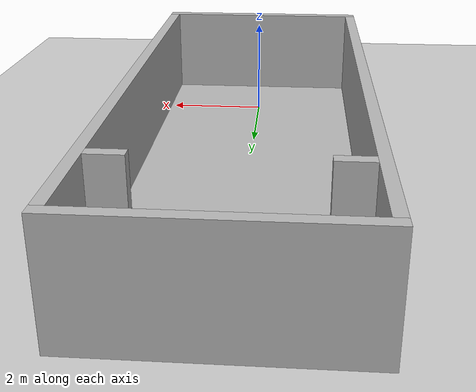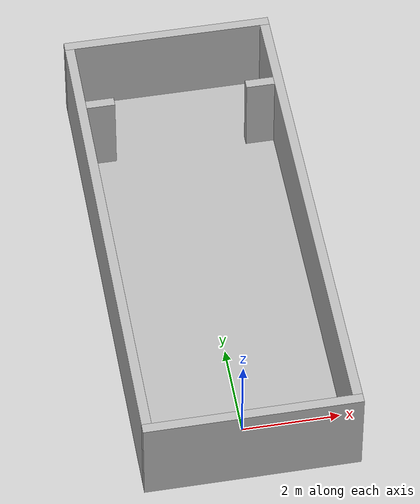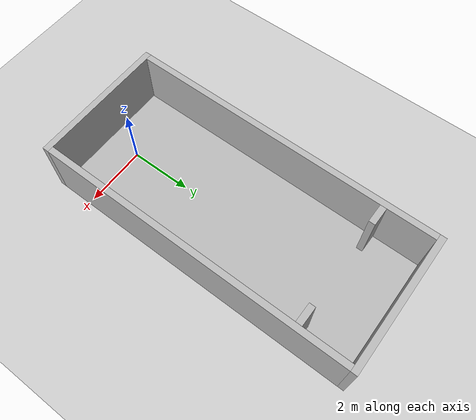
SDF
<sdf version="1.6">
 <world name="default">
  <include><uri>model://ground_plane</uri></include>
  <include><uri>model://sun</uri></include>
  <include><uri>model://test2_4m</uri></include>
 </world>
</sdf>

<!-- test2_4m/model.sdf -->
<sdf version="1.5">
  <model name="Dynamic Env Test2">
    <static>true</static>
    <link name="link1">
      <pose>0 4 0.1 0 0 0</pose>
      <collision name="collision">
        <geometry>
          <box>
            <size>4 10 0.2</size>
          </box>
        </geometry>
      </collision>
      <visual name="visual">
        <cast_shadows>false</cast_shadows>
        <geometry>
          <box>
            <size>4 10 0.2</size>
          </box>
        </geometry>
      </visual>
    </link>
    <link name="link2">
      <pose>2.1 4 1 0 0 0</pose>
      <collision name="collision">
        <geometry>
          <box>
            <size>0.2 10 2</size>
          </box>
        </geometry>
      </collision>
      <visual name="visual">
        <cast_shadows>false</cast_shadows>
        <geometry>
          <box>
            <size>0.2 10 2</size>
          </box>
        </geometry>
      </visual>
    </link>
    <link name="link3">
      <pose>-2.1 4 1 0 0 0</pose>
      <collision name="collision">
        <geometry>
          <box>
            <size>0.2 10 2</size>
          </box>
        </geometry>
      </collision>
      <visual name="visual">
        <cast_shadows>false</cast_shadows>
        <geometry>
          <box>
            <size>0.2 10 2</size>
          </box>
        </geometry>
      </visual>
    </link>
    <link name="link4">
      <pose>1.7 7.4 1 0 0 0</pose>
      <collision name="collision">
        <geometry>
          <box>
            <size>0.6 0.2 2</size>
          </box>
        </geometry>
      </collision>
      <visual name="visual">
        <cast_shadows>false</cast_shadows>
        <geometry>
          <box>
            <size>0.6 0.2 2</size>
          </box>
        </geometry>
      </visual>
    </link>
    <link name="link5">
      <pose>-1.7 7.4 1 0 0 0</pose>
      <collision name="collision">
        <geometry>
          <box>
            <size>0.6 0.2 2</size>
          </box>
        </geometry>
      </collision>
      <visual name="visual">
        <cast_shadows>false</cast_shadows>
        <geometry>
          <box>
            <size>0.6 0.2 2</size>
          </box>
        </geometry>
      </visual>
    </link>
    <link name="link6">
      <pose>0 -1.1 1 0 0 0</pose>
      <collision name="collision">
        <geometry>
          <box>
            <size>4.4 0.2 2</size>
          </box>
        </geometry>
      </collision>
      <visual name="visual">
        <cast_shadows>false</cast_shadows>
        <geometry>
          <box>
            <size>4.4 0.2 2</size>
          </box>
        </geometry>
      </visual>
    </link>
    <link name="link7">
      <pose>0 9.1 1 0 0 0</pose>
      <collision name="collision">
        <geometry>
          <box>
            <size>4.4 0.2 2</size>
          </box>
        </geometry>
      </collision>
      <visual name="visual">
        <cast_shadows>false</cast_shadows>
        <geometry>
          <box>
            <size>4.4 0.2 2</size>
          </box>
        </geometry>
      </visual>
    </link>
  </model>
</sdf>
